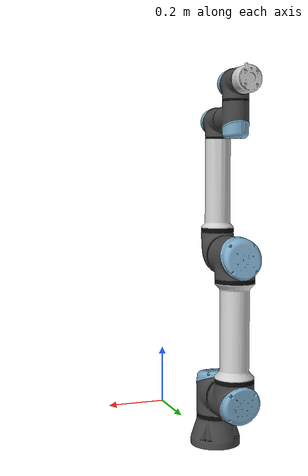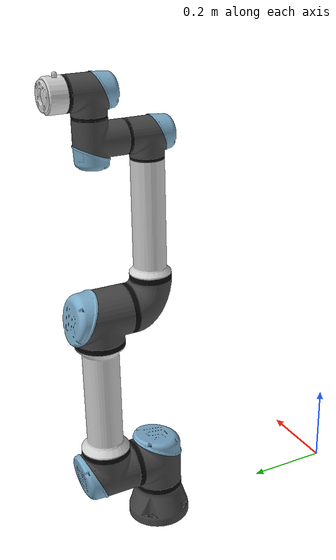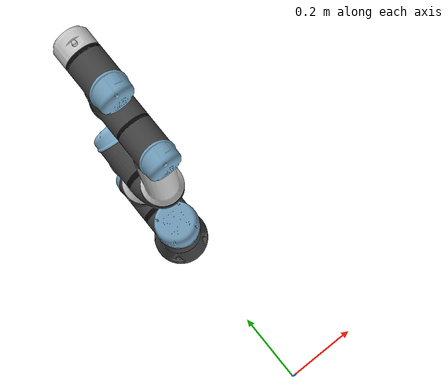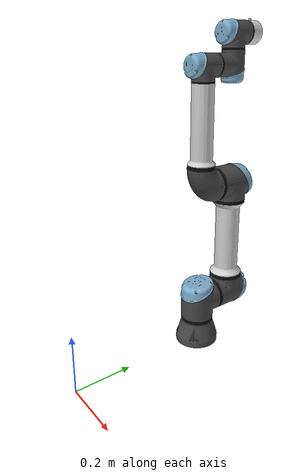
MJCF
<mujoco model="ur5eCopy">
  <compiler angle="radian" meshdir="assets"/>
  <default>
    <default class="ur5eCopy">
      <material specular="0.5" shininess="0.25"/>
      <joint axis="0 1 0" range="-6.28319 6.28319" armature="0.1"/>
      <general gaintype="fixed" biastype="affine" ctrlrange="-6.2831 6.2831" gainprm="2000" biasprm="0 -2000 -400" forcerange="-150 150"/>
      <default class="size3Copy">
        <default class="size3Copy_limited">
          <joint range="-3.1415 3.1415"/>
          <general ctrlrange="-3.1415 3.1415"/>
        </default>
      </default>
      <default class="size1Copy">
        <general gainprm="500" biasprm="0 -500 -100" forcerange="-28 28"/>
      </default>
      <default class="visualCopy">
        <geom type="mesh" contype="0" conaffinity="0" group="2"/>
      </default>
      <default class="collisionCopy">
        <geom type="capsule" group="3"/>
        <default class="eef_collisionCopy">
          <geom type="cylinder"/>
        </default>
      </default>
      <site size="0.001" rgba="0.5 0.5 0.5 0.3" group="4"/>
    </default>
  </default>
  <asset>
    <material class="ur5eCopy" name="black_arm2" rgba="0.033 0.033 0.033 1"/>
    <material class="ur5eCopy" name="jointgray_arm2" rgba="0.278 0.278 0.278 1"/>
    <material class="ur5eCopy" name="linkgray_arm2" rgba="0.82 0.82 0.82 1"/>
    <material class="ur5eCopy" name="urblue_arm2" rgba="0.49 0.678 0.8 1"/>
    <mesh file="base_0.stl"/>
    <mesh file="base_1.stl"/>
    <mesh file="shoulder_0.stl"/>
    <mesh file="shoulder_1.stl"/>
    <mesh file="shoulder_2.stl"/>
    <mesh file="upperarm_0.stl"/>
    <mesh file="upperarm_1.stl"/>
    <mesh file="upperarm_2.stl"/>
    <mesh file="upperarm_3.stl"/>
    <mesh file="forearm_0.stl"/>
    <mesh file="forearm_1.stl"/>
    <mesh file="forearm_2.stl"/>
    <mesh file="forearm_3.stl"/>
    <mesh file="wrist1_0.stl"/>
    <mesh file="wrist1_1.stl"/>
    <mesh file="wrist1_2.stl"/>
    <mesh file="wrist2_0.stl"/>
    <mesh file="wrist2_1.stl"/>
    <mesh file="wrist2_2.stl"/>
    <mesh file="wrist3.stl"/>
  </asset>
  <worldbody>
    <light name="spotlight_arm2" mode="targetbodycom" target="wrist_2_link_arm2" pos="0 -1 2"/>
    <body name="base_arm2" pos="0 0.5 0" quat="1 0 0 0" childclass="ur5eCopy">
      <inertial mass="4.0" pos="0 0 0" diaginertia="0.00443333156 0.00443333156 0.0072"/>
      <geom mesh="base_0" material="black_arm2" class="visualCopy"/>
      <geom mesh="base_1" material="jointgray_arm2" class="visualCopy"/>
      <body name="shoulder_link_arm2" pos="0 0 0.163">
        <inertial mass="3.7" pos="0 0 0" diaginertia="0.0102675 0.0102675 0.00666"/>
        <joint name="shoulder_pan_joint_arm2" class="size3Copy" axis="0 0 1"/>
        <geom mesh="shoulder_0" material="urblue_arm2" class="visualCopy"/>
        <geom mesh="shoulder_1" material="black_arm2" class="visualCopy"/>
        <geom mesh="shoulder_2" material="jointgray_arm2" class="visualCopy"/>
        <geom class="collisionCopy" size="0.06 0.06" pos="0 0 -0.04"/>
        <body name="upper_arm_link_arm2" pos="0 0.138 0" quat="1 0 0 0">
          <inertial mass="8.393" pos="0 0 0.2125" diaginertia="0.133886 0.133886 0.0151074"/>
          <joint name="shoulder_lift_joint_arm2" class="size3Copy"/>
          <geom mesh="upperarm_0" material="linkgray_arm2" class="visualCopy"/>
          <geom mesh="upperarm_1" material="black_arm2" class="visualCopy"/>
          <geom mesh="upperarm_2" material="jointgray_arm2" class="visualCopy"/>
          <geom mesh="upperarm_3" material="urblue_arm2" class="visualCopy"/>
          <geom class="collisionCopy" pos="0 -0.04 0" quat="1 1 0 0" size="0.06 0.06"/>
          <geom class="collisionCopy" size="0.05 0.2" pos="0 0 0.2"/>
          <body name="forearm_link_arm2" pos="0 -0.131 0.425">
            <inertial mass="2.275" pos="0 0 0.196" diaginertia="0.0311796 0.0311796 0.004095"/>
            <joint name="elbow_joint_arm2" class="size3Copy_limited"/>
            <geom mesh="forearm_0" material="urblue_arm2" class="visualCopy"/>
            <geom mesh="forearm_1" material="linkgray_arm2" class="visualCopy"/>
            <geom mesh="forearm_2" material="black_arm2" class="visualCopy"/>
            <geom mesh="forearm_3" material="jointgray_arm2" class="visualCopy"/>
            <geom class="collisionCopy" pos="0 0.08 0" quat="1 1 0 0" size="0.055 0.06"/>
            <geom class="collisionCopy" size="0.038 0.19" pos="0 0 0.2"/>
            <body name="wrist_1_link_arm2" pos="0 0 0.392" quat="1 0 0 0">
              <inertial mass="1.219" pos="0 0.127 0" diaginertia="0.0025599 0.0025599 0.0021942"/>
              <joint name="wrist_1_joint_arm2" class="size1Copy"/>
              <geom mesh="wrist1_0" material="black_arm2" class="visualCopy"/>
              <geom mesh="wrist1_1" material="urblue_arm2" class="visualCopy"/>
              <geom mesh="wrist1_2" material="jointgray_arm2" class="visualCopy"/>
              <geom class="collisionCopy" pos="0 0.05 0" quat="1 1 0 0" size="0.04 0.07"/>
              <body name="wrist_2_link_arm2" pos="0 0.127 0">
                <inertial mass="1.219" pos="0 0 0.1" diaginertia="0.0025599 0.0021942 0.0025599"/>
                <joint name="wrist_2_joint_arm2" axis="0 0 1" class="size1Copy"/>
                <geom mesh="wrist2_0" material="black_arm2" class="visualCopy"/>
                <geom mesh="wrist2_1" material="urblue_arm2" class="visualCopy"/>
                <geom mesh="wrist2_2" material="jointgray_arm2" class="visualCopy"/>
                <geom class="collisionCopy" size="0.04 0.06" pos="0 0 0.04"/>
                <geom class="collisionCopy" pos="0 0.02 0.1" quat="1 1 0 0" size="0.04 0.04"/>
                <body name="wrist_3_link_arm2" pos="0 0 0.1">
                  <inertial mass="0.1889" pos="0 0.0771683 0" quat="1 0 0 1" diaginertia="0.000132134 9.90863e-05 9.90863e-05"/>
                  <joint name="wrist_3_joint_arm2" class="size1Copy"/>
                  <geom material="linkgray_arm2" mesh="wrist3" class="visualCopy"/>
                  <geom class="eef_collisionCopy" pos="0 0.08 0" quat="1 1 0 0" size="0.04 0.02"/>
                  <site name="attachment_site_arm2" pos="0 0.1 0" quat="-1 1 0 0"/>
                </body>
              </body>
            </body>
          </body>
        </body>
      </body>
    </body>
  </worldbody>
</mujoco>
